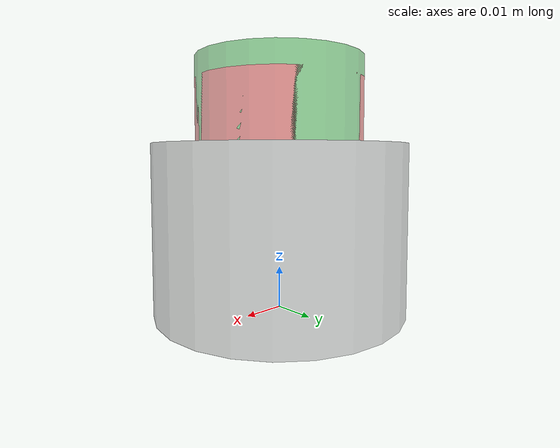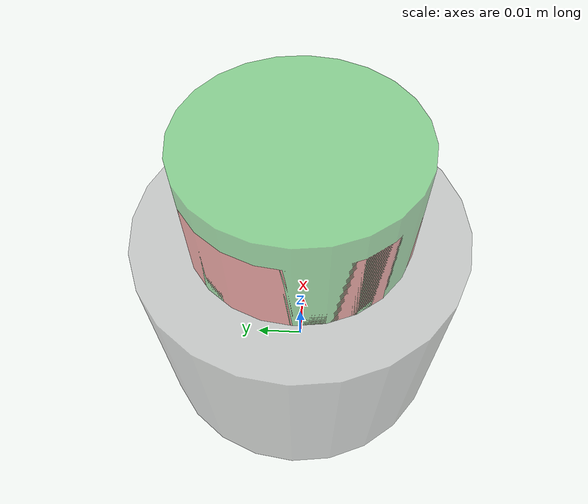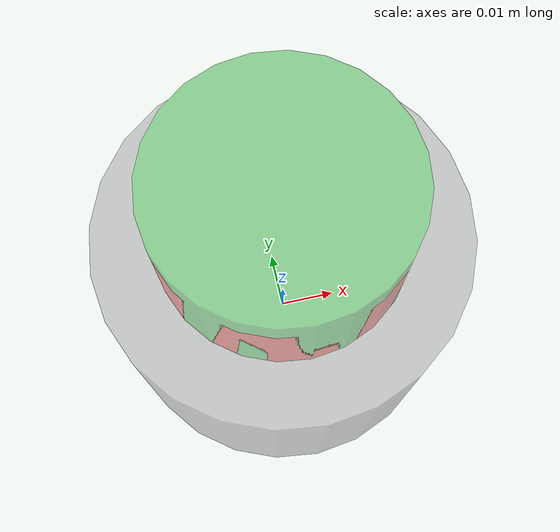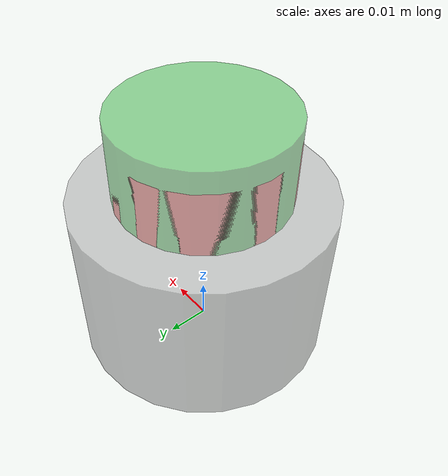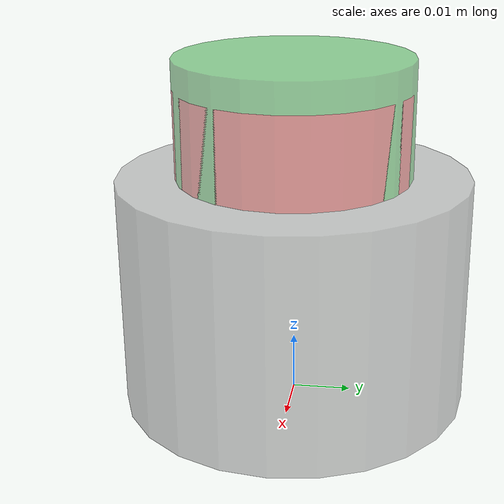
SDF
<?xml version="1.0"?>
<sdf version="1.5">
  <model name="spring">
    <pose>0 0 0.02 0 0 0</pose>
    <link name="tip_link">
      <inertial>
        <inertia>
          <ixx>0.01</ixx>
          <ixy>0.0</ixy>
          <ixz>0.0</ixz>
          <iyy>0.01</iyy>
          <iyz>0.0</iyz>
          <izz>0.01</izz>
        </inertia>
        <mass>1.0</mass>
      </inertial>
      <visual name="visual">
        <geometry>
          <cylinder>
            <length>0.04</length>
            <radius>0.03</radius>
          </cylinder>
        </geometry>
        <material>
          <script><uri>file://media/materials/scripts/gazebo.material</uri>
          <name>Gazebo/GreyTransparent</name></script>
        </material>
      </visual>
      <collision name="collision">
        <geometry>
          <cylinder>
            <length>0.04</length>
            <radius>0.03</radius>
          </cylinder>
        </geometry>
      </collision>
    </link>
    <joint name="joint" type="prismatic">
      <parent>tip_link</parent>
      <child>link1</child>
      <pose>0 0 0 0 0 0</pose>
      <axis>
        <limit>
          <lower>0.00</lower>
          <upper>0.025</upper>
        </limit>
        <xyz>0.0 0.0 1.0</xyz>
        <dynamics>
          <spring_stiffness>-200</spring_stiffness>
          <spring_reference>-0.025</spring_reference>
          <damping>0.1</damping>
          <friction>0.1</friction>
        </dynamics>
      </axis>
    </joint>

    <link name="link1">
      <pose>0 0 0 0 0 0</pose>
      <inertial>
        <inertia>
          <ixx>0.01</ixx>
          <ixy>0.0</ixy>
          <ixz>0.0</ixz>
          <iyy>0.01</iyy>
          <iyz>0.0</iyz>
          <izz>0.01</izz>
        </inertia>
        <mass>0.1</mass>
      </inertial>
      <visual name="visual">
        <pose>0 0 0.015 0 0 0</pose>
        <geometry>
          <cylinder>
            <length>0.04</length>
            <radius>0.02</radius>
          </cylinder>
        </geometry>
        <material>
          <script>
            <uri>file://media/materials/scripts/gazebo.material</uri>
            <name>Gazebo/RedTransparent</name>
          </script>
        </material>
      </visual>
      <collision name="collision">
        <pose>0 0 0.015 0 0 0</pose>
        <geometry>
          <cylinder>
            <length>0.04</length>
            <radius>0.02</radius>
          </cylinder>
        </geometry>
        <surface>
          <contact>
            <ode>
              <kp>1e5</kp>
              <kd>1</kd>
              <max_vel>100.0</max_vel>
              <min_depth>0.001</min_depth>
            </ode>
          </contact>
        </surface>
      </collision>
    </link>

    <joint name="joint2" type="prismatic">
      <parent>link1</parent>
      <child>link2</child>
      <pose>0 0 0 0 0 0</pose>
      <axis>
        <limit>
          <lower>-0.00</lower>
          <upper>0.035</upper>
        </limit>
        <xyz>0.0 0.0 1.0</xyz>
        <dynamics>
          <spring_stiffness>-200</spring_stiffness>
          <spring_reference>-0.02</spring_reference>
          <damping>0.1</damping>
          <friction>0.1</friction>
        </dynamics>
      </axis>
    </joint>

    <link name="link2">
      <pose>0 0 0 0 0 0</pose>
      <inertial>
        <inertia>
          <ixx>0.01</ixx>
          <ixy>0.0</ixy>
          <ixz>0.0</ixz>
          <iyy>0.01</iyy>
          <iyz>0.0</iyz>
          <izz>0.01</izz>
        </inertia>
        <mass>0.1</mass>
      </inertial>
      <visual name="visual">
        <pose>0 0 0.02 0 0 0</pose>
        <geometry>
          <cylinder>
            <length>0.04</length>
            <radius>0.02</radius>
          </cylinder>
        </geometry>
        <material>
          <script>
            <uri>file://media/materials/scripts/gazebo.material</uri>
            <name>Gazebo/GreenTransparent</name>
          </script>
        </material>
      </visual>
      <collision name="collision">
        <pose>0 0 0.02 0 0 0</pose>
        <geometry>
          <cylinder>
            <length>0.04</length>
            <radius>0.02</radius>
          </cylinder>
        </geometry>
        <surface>
          <contact>
            <ode>
              <kp>1e5</kp>
              <kd>1</kd>
              <max_vel>100.0</max_vel>
              <min_depth>0.001</min_depth>
            </ode>
          </contact>
        </surface>
      </collision>
    </link>

    <joint name="joint3" type="prismatic">
      <parent>link2</parent>
      <child>link3</child>
      <pose>0 0 0 0 0 0</pose>
      <axis>
        <limit>
          <lower>-0.00</lower>
          <upper>0.04</upper>
        </limit>
        <xyz>0.0 0.0 1.0</xyz>
        <dynamics>
          <spring_stiffness>-200</spring_stiffness>
          <spring_reference>-0.02</spring_reference>
          <damping>0.1</damping>
          <friction>0.1</friction>
        </dynamics>
      </axis>
    </joint>

    <link name="link3">
      <pose>0 0 0 0 0 0</pose>
      <inertial>
        <inertia>
          <ixx>0.01</ixx>
          <ixy>0.0</ixy>
          <ixz>0.0</ixz>
          <iyy>0.01</iyy>
          <iyz>0.0</iyz>
          <izz>0.01</izz>
        </inertia>
        <mass>0.1</mass>
      </inertial>
      <visual name="visual">
        <pose>0 0 0.02 0 0 0</pose>
        <geometry>
          <cylinder>
            <length>0.04</length>
            <radius>0.02</radius>
          </cylinder>
        </geometry>
        <material>
          <script>
            <uri>file://media/materials/scripts/gazebo.material</uri>
            <name>Gazebo/RedTransparent</name>
          </script>
        </material>
      </visual>
      <collision name="collision">
        <pose>0 0 0.02 0 0 0</pose>
        <geometry>
          <cylinder>
            <length>0.04</length>
            <radius>0.02</radius>
          </cylinder>
        </geometry>
        <surface>
          <contact>
            <ode>
              <kp>1e5</kp>
              <kd>1</kd>
              <max_vel>100.0</max_vel>
              <min_depth>0.001</min_depth>
            </ode>
          </contact>
        </surface>
      </collision>
    </link>
  </model>
</sdf>
